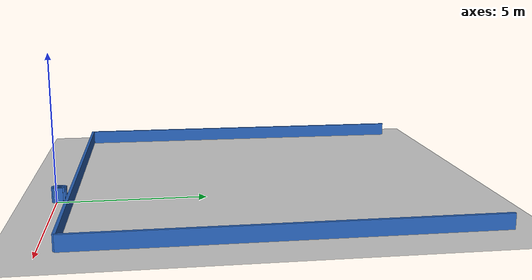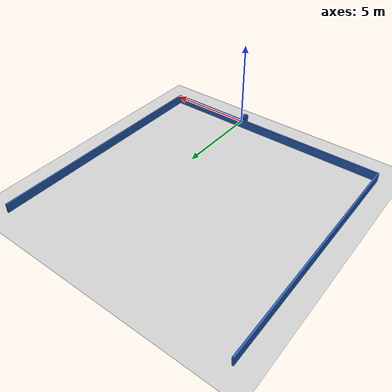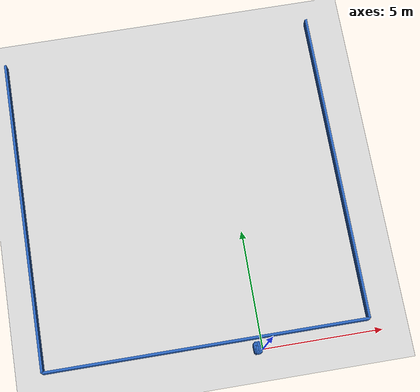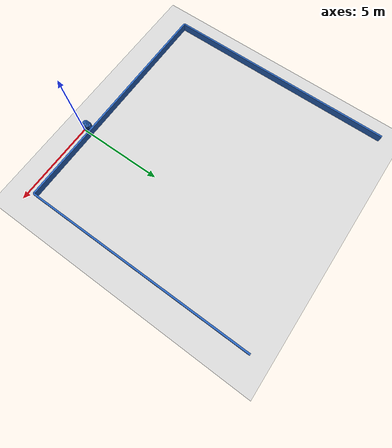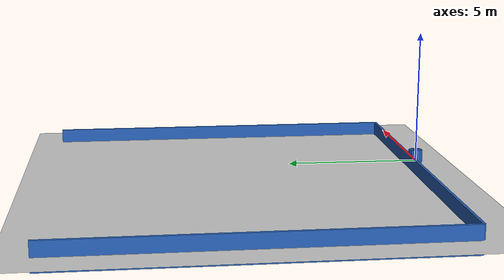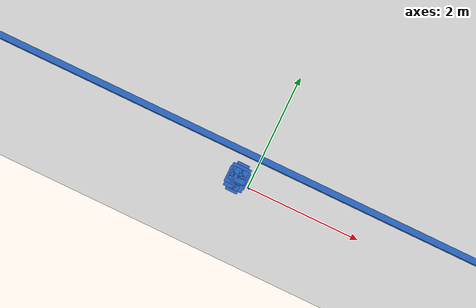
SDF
<?xml version="1.0" ?>
    <sdf version="1.5">
      <world name="default">
        <!-- A global light source -->
        <include>
          <uri>model://sun</uri>
        </include>
        <!-- A ground plane -->
        <include>
          <uri>model://ground_plane</uri>
        </include>

    <model name='libopen_space_final_T2B_125_59'>
      <static>1</static>
      <pose frame=''>-0.225000 0.075000 0.000000 0.000000 0.000000 0.000000</pose>
      <link name='link'>
        <inertial>
          <mass>1</mass>
          <inertia>
            <ixx>0.145833</ixx>
            <ixy>0</ixy>
            <ixz>0</ixz>
            <iyy>0.145833</iyy>
            <iyz>0</iyz>
            <izz>0.125</izz>
          </inertia>
        </inertial>
        <collision name='collision'>
          <geometry>
            <box>
              <size>0.28 0.15 1</size>
            </box>
          </geometry>
          <max_contacts>10</max_contacts>
          <surface>
            <contact>
              <ode/>
            </contact>
            <bounce/>
            <friction>
              <torsional>
                <ode/>
              </torsional>
              <ode/>
            </friction>
          </surface>
        </collision>
        <visual name='visual'>
          <geometry>
            <box>
              <size>0.28 0.15 1</size>
            </box>
          </geometry>
	    <material>
              <ambient>0.152000 0.379000 0.720000 1</ambient>
	      <diffuse>0.152000 0.379000 0.720000 1</diffuse>
          </material>
          <material>
            <script>
              <name>Gazebo/Grey</name>
              <uri>file://media/materials/scripts/gazebo.material</uri>
            </script>
          </material>
        </visual>
        <self_collide>0</self_collide>
        <kinematic>0</kinematic>
        <gravity>1</gravity>
      </link>
      <plugin name='libopen_space_final_T2B_125_59' filename='libopen_space_final_T2B_125_59.so'/>
    </model>

    <model name='libopen_space_final_T2B_90_7'>
      <static>1</static>
      <pose frame=''>-0.225000 0.075000 0.000000 0.000000 0.000000 0.000000</pose>
      <link name='link'>
        <inertial>
          <mass>1</mass>
          <inertia>
            <ixx>0.145833</ixx>
            <ixy>0</ixy>
            <ixz>0</ixz>
            <iyy>0.145833</iyy>
            <iyz>0</iyz>
            <izz>0.125</izz>
          </inertia>
        </inertial>
        <collision name='collision'>
          <geometry>
            <box>
              <size>0.17 0.30 1</size>
            </box>
          </geometry>
          <max_contacts>10</max_contacts>
          <surface>
            <contact>
              <ode/>
            </contact>
            <bounce/>
            <friction>
              <torsional>
                <ode/>
              </torsional>
              <ode/>
            </friction>
          </surface>
        </collision>
        <visual name='visual'>
          <geometry>
            <box>
              <size>0.17 0.30 1</size>
            </box>
          </geometry>
	    <material>
              <ambient>0.152000 0.379000 0.720000 1</ambient>
	      <diffuse>0.152000 0.379000 0.720000 1</diffuse>
          </material>
          <material>
            <script>
              <name>Gazebo/Grey</name>
              <uri>file://media/materials/scripts/gazebo.material</uri>
            </script>
          </material>
        </visual>
        <self_collide>0</self_collide>
        <kinematic>0</kinematic>
        <gravity>1</gravity>
      </link>
      <plugin name='libopen_space_final_T2B_90_7' filename='libopen_space_final_T2B_90_7.so'/>
    </model>

    <model name='libopen_space_final_T2B_85_62'>
      <static>1</static>
      <pose frame=''>-0.225000 0.075000 0.000000 0.000000 0.000000 0.000000</pose>
      <link name='link'>
        <inertial>
          <mass>1</mass>
          <inertia>
            <ixx>0.145833</ixx>
            <ixy>0</ixy>
            <ixz>0</ixz>
            <iyy>0.145833</iyy>
            <iyz>0</iyz>
            <izz>0.125</izz>
          </inertia>
        </inertial>
        <collision name='collision'>
          <geometry>
            <box>
              <size>0.12 0.10 1</size>
            </box>
          </geometry>
          <max_contacts>10</max_contacts>
          <surface>
            <contact>
              <ode/>
            </contact>
            <bounce/>
            <friction>
              <torsional>
                <ode/>
              </torsional>
              <ode/>
            </friction>
          </surface>
        </collision>
        <visual name='visual'>
          <geometry>
            <box>
              <size>0.12 0.10 1</size>
            </box>
          </geometry>
	    <material>
              <ambient>0.152000 0.379000 0.720000 1</ambient>
	      <diffuse>0.152000 0.379000 0.720000 1</diffuse>
          </material>
          <material>
            <script>
              <name>Gazebo/Grey</name>
              <uri>file://media/materials/scripts/gazebo.material</uri>
            </script>
          </material>
        </visual>
        <self_collide>0</self_collide>
        <kinematic>0</kinematic>
        <gravity>1</gravity>
      </link>
      <plugin name='libopen_space_final_T2B_85_62' filename='libopen_space_final_T2B_85_62.so'/>
    </model>

    <model name='libopen_space_final_T2B_91_57'>
      <static>1</static>
      <pose frame=''>-0.225000 0.075000 0.000000 0.000000 0.000000 0.000000</pose>
      <link name='link'>
        <inertial>
          <mass>1</mass>
          <inertia>
            <ixx>0.145833</ixx>
            <ixy>0</ixy>
            <ixz>0</ixz>
            <iyy>0.145833</iyy>
            <iyz>0</iyz>
            <izz>0.125</izz>
          </inertia>
        </inertial>
        <collision name='collision'>
          <geometry>
            <box>
              <size>0.26 0.30 1</size>
            </box>
          </geometry>
          <max_contacts>10</max_contacts>
          <surface>
            <contact>
              <ode/>
            </contact>
            <bounce/>
            <friction>
              <torsional>
                <ode/>
              </torsional>
              <ode/>
            </friction>
          </surface>
        </collision>
        <visual name='visual'>
          <geometry>
            <box>
              <size>0.26 0.30 1</size>
            </box>
          </geometry>
	    <material>
              <ambient>0.152000 0.379000 0.720000 1</ambient>
	      <diffuse>0.152000 0.379000 0.720000 1</diffuse>
          </material>
          <material>
            <script>
              <name>Gazebo/Grey</name>
              <uri>file://media/materials/scripts/gazebo.material</uri>
            </script>
          </material>
        </visual>
        <self_collide>0</self_collide>
        <kinematic>0</kinematic>
        <gravity>1</gravity>
      </link>
      <plugin name='libopen_space_final_T2B_91_57' filename='libopen_space_final_T2B_91_57.so'/>
    </model>

    <model name='libopen_space_final_T2B_129_21'>
      <static>1</static>
      <pose frame=''>-0.225000 0.075000 0.000000 0.000000 0.000000 0.000000</pose>
      <link name='link'>
        <inertial>
          <mass>1</mass>
          <inertia>
            <ixx>0.145833</ixx>
            <ixy>0</ixy>
            <ixz>0</ixz>
            <iyy>0.145833</iyy>
            <iyz>0</iyz>
            <izz>0.125</izz>
          </inertia>
        </inertial>
        <collision name='collision'>
          <geometry>
            <box>
              <size>0.29 0.22 1</size>
            </box>
          </geometry>
          <max_contacts>10</max_contacts>
          <surface>
            <contact>
              <ode/>
            </contact>
            <bounce/>
            <friction>
              <torsional>
                <ode/>
              </torsional>
              <ode/>
            </friction>
          </surface>
        </collision>
        <visual name='visual'>
          <geometry>
            <box>
              <size>0.29 0.22 1</size>
            </box>
          </geometry>
	    <material>
              <ambient>0.152000 0.379000 0.720000 1</ambient>
	      <diffuse>0.152000 0.379000 0.720000 1</diffuse>
          </material>
          <material>
            <script>
              <name>Gazebo/Grey</name>
              <uri>file://media/materials/scripts/gazebo.material</uri>
            </script>
          </material>
        </visual>
        <self_collide>0</self_collide>
        <kinematic>0</kinematic>
        <gravity>1</gravity>
      </link>
      <plugin name='libopen_space_final_T2B_129_21' filename='libopen_space_final_T2B_129_21.so'/>
    </model>

    <model name='libopen_space_final_T2B_96_80'>
      <static>1</static>
      <pose frame=''>-0.225000 0.075000 0.000000 0.000000 0.000000 0.000000</pose>
      <link name='link'>
        <inertial>
          <mass>1</mass>
          <inertia>
            <ixx>0.145833</ixx>
            <ixy>0</ixy>
            <ixz>0</ixz>
            <iyy>0.145833</iyy>
            <iyz>0</iyz>
            <izz>0.125</izz>
          </inertia>
        </inertial>
        <collision name='collision'>
          <geometry>
            <box>
              <size>0.20 0.19 1</size>
            </box>
          </geometry>
          <max_contacts>10</max_contacts>
          <surface>
            <contact>
              <ode/>
            </contact>
            <bounce/>
            <friction>
              <torsional>
                <ode/>
              </torsional>
              <ode/>
            </friction>
          </surface>
        </collision>
        <visual name='visual'>
          <geometry>
            <box>
              <size>0.20 0.19 1</size>
            </box>
          </geometry>
	    <material>
              <ambient>0.152000 0.379000 0.720000 1</ambient>
	      <diffuse>0.152000 0.379000 0.720000 1</diffuse>
          </material>
          <material>
            <script>
              <name>Gazebo/Grey</name>
              <uri>file://media/materials/scripts/gazebo.material</uri>
            </script>
          </material>
        </visual>
        <self_collide>0</self_collide>
        <kinematic>0</kinematic>
        <gravity>1</gravity>
      </link>
      <plugin name='libopen_space_final_T2B_96_80' filename='libopen_space_final_T2B_96_80.so'/>
    </model>

    <model name='libopen_space_final_T2B_57_10'>
      <static>1</static>
      <pose frame=''>-0.225000 0.075000 0.000000 0.000000 0.000000 0.000000</pose>
      <link name='link'>
        <inertial>
          <mass>1</mass>
          <inertia>
            <ixx>0.145833</ixx>
            <ixy>0</ixy>
            <ixz>0</ixz>
            <iyy>0.145833</iyy>
            <iyz>0</iyz>
            <izz>0.125</izz>
          </inertia>
        </inertial>
        <collision name='collision'>
          <geometry>
            <box>
              <size>0.21 0.49 1</size>
            </box>
          </geometry>
          <max_contacts>10</max_contacts>
          <surface>
            <contact>
              <ode/>
            </contact>
            <bounce/>
            <friction>
              <torsional>
                <ode/>
              </torsional>
              <ode/>
            </friction>
          </surface>
        </collision>
        <visual name='visual'>
          <geometry>
            <box>
              <size>0.21 0.49 1</size>
            </box>
          </geometry>
	    <material>
              <ambient>0.152000 0.379000 0.720000 1</ambient>
	      <diffuse>0.152000 0.379000 0.720000 1</diffuse>
          </material>
          <material>
            <script>
              <name>Gazebo/Grey</name>
              <uri>file://media/materials/scripts/gazebo.material</uri>
            </script>
          </material>
        </visual>
        <self_collide>0</self_collide>
        <kinematic>0</kinematic>
        <gravity>1</gravity>
      </link>
      <plugin name='libopen_space_final_T2B_57_10' filename='libopen_space_final_T2B_57_10.so'/>
    </model>

    <model name='libopen_space_final_T2B_56_75'>
      <static>1</static>
      <pose frame=''>-0.225000 0.075000 0.000000 0.000000 0.000000 0.000000</pose>
      <link name='link'>
        <inertial>
          <mass>1</mass>
          <inertia>
            <ixx>0.145833</ixx>
            <ixy>0</ixy>
            <ixz>0</ixz>
            <iyy>0.145833</iyy>
            <iyz>0</iyz>
            <izz>0.125</izz>
          </inertia>
        </inertial>
        <collision name='collision'>
          <geometry>
            <box>
              <size>0.17 0.21 1</size>
            </box>
          </geometry>
          <max_contacts>10</max_contacts>
          <surface>
            <contact>
              <ode/>
            </contact>
            <bounce/>
            <friction>
              <torsional>
                <ode/>
              </torsional>
              <ode/>
            </friction>
          </surface>
        </collision>
        <visual name='visual'>
          <geometry>
            <box>
              <size>0.17 0.21 1</size>
            </box>
          </geometry>
	    <material>
              <ambient>0.152000 0.379000 0.720000 1</ambient>
	      <diffuse>0.152000 0.379000 0.720000 1</diffuse>
          </material>
          <material>
            <script>
              <name>Gazebo/Grey</name>
              <uri>file://media/materials/scripts/gazebo.material</uri>
            </script>
          </material>
        </visual>
        <self_collide>0</self_collide>
        <kinematic>0</kinematic>
        <gravity>1</gravity>
      </link>
      <plugin name='libopen_space_final_T2B_56_75' filename='libopen_space_final_T2B_56_75.so'/>
    </model>

    <model name='libopen_space_final_T2B_52_49'>
      <static>1</static>
      <pose frame=''>-0.225000 0.075000 0.000000 0.000000 0.000000 0.000000</pose>
      <link name='link'>
        <inertial>
          <mass>1</mass>
          <inertia>
            <ixx>0.145833</ixx>
            <ixy>0</ixy>
            <ixz>0</ixz>
            <iyy>0.145833</iyy>
            <iyz>0</iyz>
            <izz>0.125</izz>
          </inertia>
        </inertial>
        <collision name='collision'>
          <geometry>
            <box>
              <size>0.23 0.12 1</size>
            </box>
          </geometry>
          <max_contacts>10</max_contacts>
          <surface>
            <contact>
              <ode/>
            </contact>
            <bounce/>
            <friction>
              <torsional>
                <ode/>
              </torsional>
              <ode/>
            </friction>
          </surface>
        </collision>
        <visual name='visual'>
          <geometry>
            <box>
              <size>0.23 0.12 1</size>
            </box>
          </geometry>
	    <material>
              <ambient>0.152000 0.379000 0.720000 1</ambient>
	      <diffuse>0.152000 0.379000 0.720000 1</diffuse>
          </material>
          <material>
            <script>
              <name>Gazebo/Grey</name>
              <uri>file://media/materials/scripts/gazebo.material</uri>
            </script>
          </material>
        </visual>
        <self_collide>0</self_collide>
        <kinematic>0</kinematic>
        <gravity>1</gravity>
      </link>
      <plugin name='libopen_space_final_T2B_52_49' filename='libopen_space_final_T2B_52_49.so'/>
    </model>

    <model name='libopen_space_final_T2B_87_56'>
      <static>1</static>
      <pose frame=''>-0.225000 0.075000 0.000000 0.000000 0.000000 0.000000</pose>
      <link name='link'>
        <inertial>
          <mass>1</mass>
          <inertia>
            <ixx>0.145833</ixx>
            <ixy>0</ixy>
            <ixz>0</ixz>
            <iyy>0.145833</iyy>
            <iyz>0</iyz>
            <izz>0.125</izz>
          </inertia>
        </inertial>
        <collision name='collision'>
          <geometry>
            <box>
              <size>0.19 0.40 1</size>
            </box>
          </geometry>
          <max_contacts>10</max_contacts>
          <surface>
            <contact>
              <ode/>
            </contact>
            <bounce/>
            <friction>
              <torsional>
                <ode/>
              </torsional>
              <ode/>
            </friction>
          </surface>
        </collision>
        <visual name='visual'>
          <geometry>
            <box>
              <size>0.19 0.40 1</size>
            </box>
          </geometry>
	    <material>
              <ambient>0.152000 0.379000 0.720000 1</ambient>
	      <diffuse>0.152000 0.379000 0.720000 1</diffuse>
          </material>
          <material>
            <script>
              <name>Gazebo/Grey</name>
              <uri>file://media/materials/scripts/gazebo.material</uri>
            </script>
          </material>
        </visual>
        <self_collide>0</self_collide>
        <kinematic>0</kinematic>
        <gravity>1</gravity>
      </link>
      <plugin name='libopen_space_final_T2B_87_56' filename='libopen_space_final_T2B_87_56.so'/>
    </model>

    <model name='libopen_space_final_T2B_100_36'>
      <static>1</static>
      <pose frame=''>-0.225000 0.075000 0.000000 0.000000 0.000000 0.000000</pose>
      <link name='link'>
        <inertial>
          <mass>1</mass>
          <inertia>
            <ixx>0.145833</ixx>
            <ixy>0</ixy>
            <ixz>0</ixz>
            <iyy>0.145833</iyy>
            <iyz>0</iyz>
            <izz>0.125</izz>
          </inertia>
        </inertial>
        <collision name='collision'>
          <geometry>
            <box>
              <size>0.29 0.16 1</size>
            </box>
          </geometry>
          <max_contacts>10</max_contacts>
          <surface>
            <contact>
              <ode/>
            </contact>
            <bounce/>
            <friction>
              <torsional>
                <ode/>
              </torsional>
              <ode/>
            </friction>
          </surface>
        </collision>
        <visual name='visual'>
          <geometry>
            <box>
              <size>0.29 0.16 1</size>
            </box>
          </geometry>
	    <material>
              <ambient>0.152000 0.379000 0.720000 1</ambient>
	      <diffuse>0.152000 0.379000 0.720000 1</diffuse>
          </material>
          <material>
            <script>
              <name>Gazebo/Grey</name>
              <uri>file://media/materials/scripts/gazebo.material</uri>
            </script>
          </material>
        </visual>
        <self_collide>0</self_collide>
        <kinematic>0</kinematic>
        <gravity>1</gravity>
      </link>
      <plugin name='libopen_space_final_T2B_100_36' filename='libopen_space_final_T2B_100_36.so'/>
    </model>

    <model name='libopen_space_final_T2B_83_61'>
      <static>1</static>
      <pose frame=''>-0.225000 0.075000 0.000000 0.000000 0.000000 0.000000</pose>
      <link name='link'>
        <inertial>
          <mass>1</mass>
          <inertia>
            <ixx>0.145833</ixx>
            <ixy>0</ixy>
            <ixz>0</ixz>
            <iyy>0.145833</iyy>
            <iyz>0</iyz>
            <izz>0.125</izz>
          </inertia>
        </inertial>
        <collision name='collision'>
          <geometry>
            <box>
              <size>0.32 0.40 1</size>
            </box>
          </geometry>
          <max_contacts>10</max_contacts>
          <surface>
            <contact>
              <ode/>
            </contact>
            <bounce/>
            <friction>
              <torsional>
                <ode/>
              </torsional>
              <ode/>
            </friction>
          </surface>
        </collision>
        <visual name='visual'>
          <geometry>
            <box>
              <size>0.32 0.40 1</size>
            </box>
          </geometry>
	    <material>
              <ambient>0.152000 0.379000 0.720000 1</ambient>
	      <diffuse>0.152000 0.379000 0.720000 1</diffuse>
          </material>
          <material>
            <script>
              <name>Gazebo/Grey</name>
              <uri>file://media/materials/scripts/gazebo.material</uri>
            </script>
          </material>
        </visual>
        <self_collide>0</self_collide>
        <kinematic>0</kinematic>
        <gravity>1</gravity>
      </link>
      <plugin name='libopen_space_final_T2B_83_61' filename='libopen_space_final_T2B_83_61.so'/>
    </model>

    <model name='libopen_space_final_T2B_115_24'>
      <static>1</static>
      <pose frame=''>-0.225000 0.075000 0.000000 0.000000 0.000000 0.000000</pose>
      <link name='link'>
        <inertial>
          <mass>1</mass>
          <inertia>
            <ixx>0.145833</ixx>
            <ixy>0</ixy>
            <ixz>0</ixz>
            <iyy>0.145833</iyy>
            <iyz>0</iyz>
            <izz>0.125</izz>
          </inertia>
        </inertial>
        <collision name='collision'>
          <geometry>
            <box>
              <size>0.35 0.27 1</size>
            </box>
          </geometry>
          <max_contacts>10</max_contacts>
          <surface>
            <contact>
              <ode/>
            </contact>
            <bounce/>
            <friction>
              <torsional>
                <ode/>
              </torsional>
              <ode/>
            </friction>
          </surface>
        </collision>
        <visual name='visual'>
          <geometry>
            <box>
              <size>0.35 0.27 1</size>
            </box>
          </geometry>
	    <material>
              <ambient>0.152000 0.379000 0.720000 1</ambient>
	      <diffuse>0.152000 0.379000 0.720000 1</diffuse>
          </material>
          <material>
            <script>
              <name>Gazebo/Grey</name>
              <uri>file://media/materials/scripts/gazebo.material</uri>
            </script>
          </material>
        </visual>
        <self_collide>0</self_collide>
        <kinematic>0</kinematic>
        <gravity>1</gravity>
      </link>
      <plugin name='libopen_space_final_T2B_115_24' filename='libopen_space_final_T2B_115_24.so'/>
    </model>

        <model name='bottom_wall'>
          <static>1</static>
          <pose frame=''>-2.25 0.5 0.000000 0.000000 0.000000 1.57079632</pose>
          <link name='link'>
            <inertial>
            <mass>1</mass>
            <inertia>
              <ixx>0.145833</ixx>
              <ixy>0</ixy>
              <ixz>0</ixz>
              <iyy>0.145833</iyy>
              <iyz>0</iyz>
              <izz>0.125</izz>
            </inertia>
            </inertial>
            <collision name='collision'>
            <geometry>
              <box>
              <size>0.1 13.5 1</size>
              </box>
            </geometry>
            <max_contacts>10</max_contacts>
            <surface>
              <contact>
              <ode/>
              </contact>
              <bounce/>
              <friction>
              <torsional>
                <ode/>
              </torsional>
              <ode/>
              </friction>
            </surface>
            </collision>
            <visual name='visual'>
            <geometry>
              <box>
              <size>0.1 13.5 1</size>
              </box>
            </geometry>
            <material>
              <ambient>0.152000 0.379000 0.720000 1</ambient>
            <diffuse>0.152000 0.379000 0.720000 1</diffuse>
            </material>
            <material>
              <script>
              <name>Gazebo/Grey</name>
              <uri>file://media/materials/scripts/gazebo.material</uri>
              </script>
            </material>
            </visual>
            <self_collide>0</self_collide>
            <kinematic>0</kinematic>
            <gravity>1</gravity>
          </link>
        </model>

        <model name='left_wall'>
          <static>1</static>
          <pose frame=''>-9 7.25 0.000000 0.000000 0.000000 0.000000</pose>
          <link name='link'>
            <inertial>
            <mass>1</mass>
            <inertia>
              <ixx>0.145833</ixx>
              <ixy>0</ixy>
              <ixz>0</ixz>
              <iyy>0.145833</iyy>
              <iyz>0</iyz>
              <izz>0.125</izz>
            </inertia>
            </inertial>
            <collision name='collision'>
            <geometry>
              <box>
              <size>0.1 13.5 1</size>
              </box>
            </geometry>
            <max_contacts>10</max_contacts>
            <surface>
              <contact>
              <ode/>
              </contact>
              <bounce/>
              <friction>
              <torsional>
                <ode/>
              </torsional>
              <ode/>
              </friction>
            </surface>
            </collision>
            <visual name='visual'>
            <geometry>
              <box>
              <size>0.1 13.5 1</size>
              </box>
            </geometry>
            <material>
              <ambient>0.152000 0.379000 0.720000 1</ambient>
            <diffuse>0.152000 0.379000 0.720000 1</diffuse>
            </material>
            <material>
              <script>
              <name>Gazebo/Grey</name>
              <uri>file://media/materials/scripts/gazebo.material</uri>
              </script>
            </material>
            </visual>
            <self_collide>0</self_collide>
            <kinematic>0</kinematic>
            <gravity>1</gravity>
          </link>
        </model>

        <model name='right_wall'>
          <static>1</static>
          <pose frame=''>4.5 7.25 0.000000 0.000000 0.000000 0.000000</pose>
          <link name='link'>
            <inertial>
            <mass>1</mass>
            <inertia>
              <ixx>0.145833</ixx>
              <ixy>0</ixy>
              <ixz>0</ixz>
              <iyy>0.145833</iyy>
              <iyz>0</iyz>
              <izz>0.125</izz>
            </inertia>
            </inertial>
            <collision name='collision'>
            <geometry>
              <box>
              <size>0.1 13.5 1</size>
              </box>
            </geometry>
            <max_contacts>10</max_contacts>
            <surface>
              <contact>
              <ode/>
              </contact>
              <bounce/>
              <friction>
              <torsional>
                <ode/>
              </torsional>
              <ode/>
              </friction>
            </surface>
            </collision>
            <visual name='visual'>
            <geometry>
              <box>
              <size>0.1 13.5 1</size>
              </box>
            </geometry>
            <material>
              <ambient>0.152000 0.379000 0.720000 1</ambient>
            <diffuse>0.152000 0.379000 0.720000 1</diffuse>
            </material>
            <material>
              <script>
              <name>Gazebo/Grey</name>
              <uri>file://media/materials/scripts/gazebo.material</uri>
              </script>
            </material>
            </visual>
            <self_collide>0</self_collide>
            <kinematic>0</kinematic>
            <gravity>1</gravity>
          </link>
        </model>

      </world>
    </sdf>"
